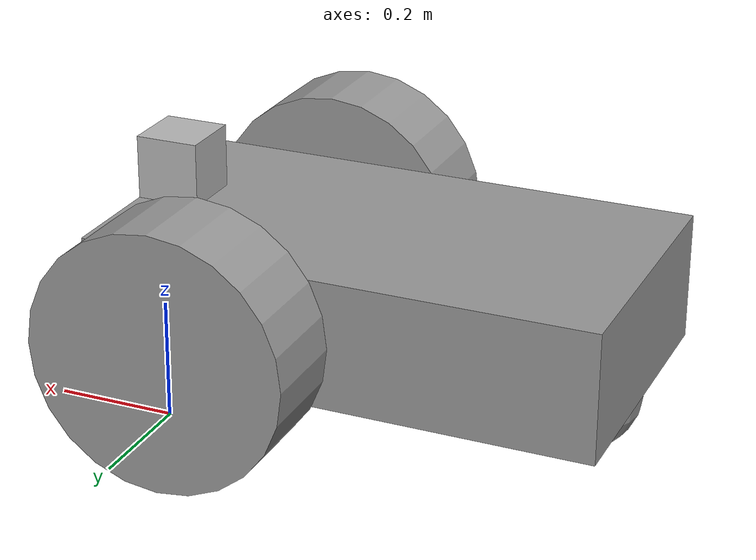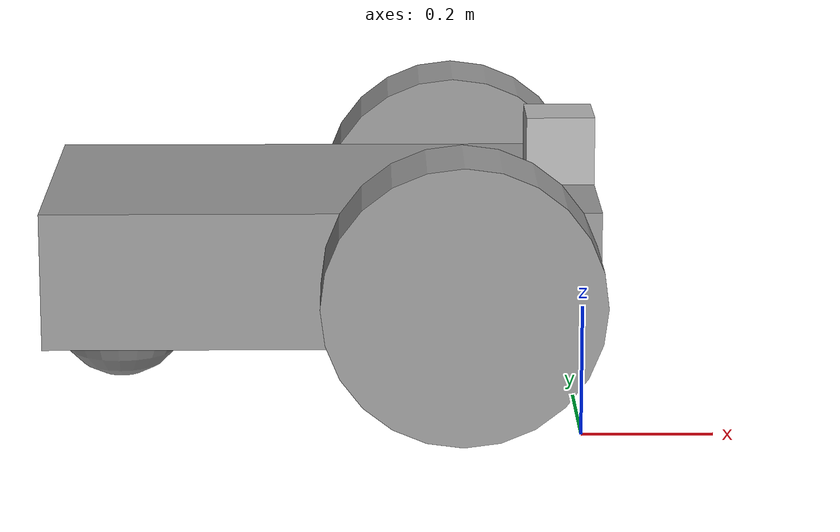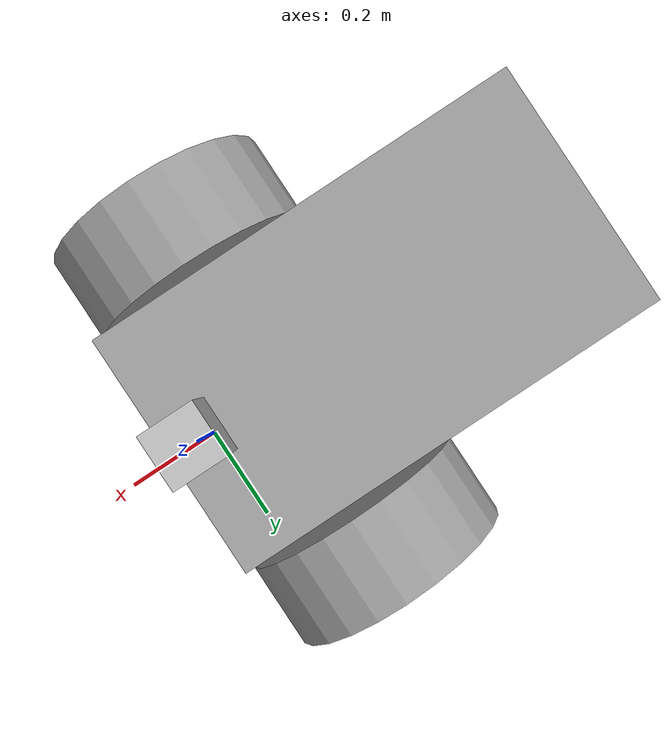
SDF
<?xml version='1.0'?>
<sdf version='1.6'>
  <model name='model'>
    <link name='link_0'>
      <inertial>
        <mass>1.00629</mass>
        <inertia>
          <ixx>0.119355</ixx>
          <ixy>0</ixy>
          <ixz>0</ixz>
          <iyy>0.286315</iyy>
          <iyz>0</iyz>
          <izz>0.358071</izz>
        </inertia>
        <pose frame=''>0 0 0 0 -0 0</pose>
      </inertial>
      <pose frame=''>-0.389773 -0 0.3 0 -0 0</pose>
      <gravity>1</gravity>
      <self_collide>0</self_collide>
      <kinematic>0</kinematic>
      <enable_wind>0</enable_wind>
      <visual name='visual'>
        <pose frame=''>0 0 0 0 -0 0</pose>
        <geometry>
          <box>
            <size>0.8 0.45 0.2</size>
          </box>
        </geometry>
        <material>
          <lighting>1</lighting>
          <script>
            <uri>file://media/materials/scripts/gazebo.material</uri>
            <name>Gazebo/Grey</name>
          </script>
          <shader type='vertex'>
            <normal_map>__default__</normal_map>
          </shader>
          <ambient>0.3 0.3 0.3 1</ambient>
          <diffuse>0.7 0.7 0.7 1</diffuse>
          <specular>0.01 0.01 0.01 1</specular>
          <emissive>0 0 0 1</emissive>
        </material>
        <transparency>0</transparency>
        <cast_shadows>1</cast_shadows>
      </visual>
      <collision name='collision'>
        <laser_retro>0</laser_retro>
        <max_contacts>10</max_contacts>
        <pose frame=''>0 0 0 0 -0 0</pose>
        <geometry>
          <box>
            <size>0.8 0.45 0.2</size>
          </box>
        </geometry>
        <surface>
          <friction>
            <ode>
              <mu>1</mu>
              <mu2>1</mu2>
              <fdir1>0 0 0</fdir1>
              <slip1>0</slip1>
              <slip2>0</slip2>
            </ode>
            <torsional>
              <coefficient>1</coefficient>
              <patch_radius>0</patch_radius>
              <surface_radius>0</surface_radius>
              <use_patch_radius>1</use_patch_radius>
              <ode>
                <slip>0</slip>
              </ode>
            </torsional>
          </friction>
          <bounce>
            <restitution_coefficient>0</restitution_coefficient>
            <threshold>1e+06</threshold>
          </bounce>
          <contact>
            <collide_without_contact>0</collide_without_contact>
            <collide_without_contact_bitmask>1</collide_without_contact_bitmask>
            <collide_bitmask>1</collide_bitmask>
            <ode>
              <soft_cfm>0</soft_cfm>
              <soft_erp>0.2</soft_erp>
              <kp>1e+13</kp>
              <kd>1</kd>
              <max_vel>0.01</max_vel>
              <min_depth>0</min_depth>
            </ode>
            <bullet>
              <split_impulse>1</split_impulse>
              <split_impulse_penetration_threshold>-0.01</split_impulse_penetration_threshold>
              <soft_cfm>0</soft_cfm>
              <soft_erp>0.2</soft_erp>
              <kp>1e+13</kp>
              <kd>1</kd>
            </bullet>
          </contact>
        </surface>
      </collision>
    </link>
    <link name='link_0_0'>
      <inertial>
        <mass>1</mass>
        <inertia>
          <ixx>0.1</ixx>
          <ixy>0</ixy>
          <ixz>0</ixz>
          <iyy>0.1</iyy>
          <iyz>0</iyz>
          <izz>0.1</izz>
        </inertia>
        <pose frame=''>0 0 0 0 -0 0</pose>
      </inertial>
      <pose frame=''>-0.689795 3.2e-05 0.199999 0 -0 0</pose>
      <gravity>1</gravity>
      <self_collide>0</self_collide>
      <kinematic>0</kinematic>
      <enable_wind>0</enable_wind>
      <visual name='visual'>
        <pose frame=''>0 0 0 0 -0 0</pose>
        <geometry>
          <sphere>
            <radius>0.1</radius>
          </sphere>
        </geometry>
        <material>
          <lighting>1</lighting>
          <script>
            <uri>file://media/materials/scripts/gazebo.material</uri>
            <name>Gazebo/Grey</name>
          </script>
          <shader type='vertex'>
            <normal_map>__default__</normal_map>
          </shader>
          <ambient>0.3 0.3 0.3 1</ambient>
          <diffuse>0.7 0.7 0.7 1</diffuse>
          <specular>0.01 0.01 0.01 1</specular>
          <emissive>0 0 0 1</emissive>
        </material>
        <transparency>0</transparency>
        <cast_shadows>1</cast_shadows>
      </visual>
      <collision name='collision'>
        <laser_retro>0</laser_retro>
        <max_contacts>10</max_contacts>
        <pose frame=''>0 0 0 0 -0 0</pose>
        <geometry>
          <sphere>
            <radius>0.1</radius>
          </sphere>
        </geometry>
        <surface>
          <friction>
            <ode>
              <mu>1</mu>
              <mu2>1</mu2>
              <fdir1>0 0 0</fdir1>
              <slip1>0</slip1>
              <slip2>0</slip2>
            </ode>
            <torsional>
              <coefficient>1</coefficient>
              <patch_radius>0</patch_radius>
              <surface_radius>0</surface_radius>
              <use_patch_radius>1</use_patch_radius>
              <ode>
                <slip>0</slip>
              </ode>
            </torsional>
          </friction>
          <bounce>
            <restitution_coefficient>0</restitution_coefficient>
            <threshold>1e+06</threshold>
          </bounce>
          <contact>
            <collide_without_contact>0</collide_without_contact>
            <collide_without_contact_bitmask>1</collide_without_contact_bitmask>
            <collide_bitmask>1</collide_bitmask>
            <ode>
              <soft_cfm>0</soft_cfm>
              <soft_erp>0.2</soft_erp>
              <kp>1e+13</kp>
              <kd>1</kd>
              <max_vel>0.01</max_vel>
              <min_depth>0</min_depth>
            </ode>
            <bullet>
              <split_impulse>1</split_impulse>
              <split_impulse_penetration_threshold>-0.01</split_impulse_penetration_threshold>
              <soft_cfm>0</soft_cfm>
              <soft_erp>0.2</soft_erp>
              <kp>1e+13</kp>
              <kd>1</kd>
            </bullet>
          </contact>
        </surface>
      </collision>
    </link>
    <link name='link_1'>
      <inertial>
        <mass>1</mass>
        <inertia>
          <ixx>0.145833</ixx>
          <ixy>0</ixy>
          <ixz>0</ixz>
          <iyy>0.145833</iyy>
          <iyz>0</iyz>
          <izz>0.125</izz>
        </inertia>
        <pose frame=''>0 0 0 0 -0 0</pose>
      </inertial>
      <pose frame=''>-0.189783 -0.300107 0.300001 1.5707 -0 0</pose>
      <gravity>1</gravity>
      <self_collide>0</self_collide>
      <kinematic>0</kinematic>
      <enable_wind>0</enable_wind>
      <visual name='visual'>
        <pose frame=''>0 0 0 0 -0 0</pose>
        <geometry>
          <cylinder>
            <radius>0.2</radius>
            <length>0.15</length>
          </cylinder>
        </geometry>
        <material>
          <lighting>1</lighting>
          <script>
            <uri>file://media/materials/scripts/gazebo.material</uri>
            <name>Gazebo/Grey</name>
          </script>
          <shader type='vertex'>
            <normal_map>__default__</normal_map>
          </shader>
          <ambient>0.3 0.3 0.3 1</ambient>
          <diffuse>0.7 0.7 0.7 1</diffuse>
          <specular>0.01 0.01 0.01 1</specular>
          <emissive>0 0 0 1</emissive>
        </material>
        <transparency>0</transparency>
        <cast_shadows>1</cast_shadows>
      </visual>
      <collision name='collision'>
        <laser_retro>0</laser_retro>
        <max_contacts>10</max_contacts>
        <pose frame=''>0 0 0 0 -0 0</pose>
        <geometry>
          <cylinder>
            <radius>0.2</radius>
            <length>0.15</length>
          </cylinder>
        </geometry>
        <surface>
          <friction>
            <ode>
              <mu>1</mu>
              <mu2>1</mu2>
              <fdir1>0 0 0</fdir1>
              <slip1>0</slip1>
              <slip2>0</slip2>
            </ode>
            <torsional>
              <coefficient>1</coefficient>
              <patch_radius>0</patch_radius>
              <surface_radius>0</surface_radius>
              <use_patch_radius>1</use_patch_radius>
              <ode>
                <slip>0</slip>
              </ode>
            </torsional>
          </friction>
          <bounce>
            <restitution_coefficient>0</restitution_coefficient>
            <threshold>1e+06</threshold>
          </bounce>
          <contact>
            <collide_without_contact>0</collide_without_contact>
            <collide_without_contact_bitmask>1</collide_without_contact_bitmask>
            <collide_bitmask>1</collide_bitmask>
            <ode>
              <soft_cfm>0</soft_cfm>
              <soft_erp>0.2</soft_erp>
              <kp>1e+13</kp>
              <kd>1</kd>
              <max_vel>0.01</max_vel>
              <min_depth>0</min_depth>
            </ode>
            <bullet>
              <split_impulse>1</split_impulse>
              <split_impulse_penetration_threshold>-0.01</split_impulse_penetration_threshold>
              <soft_cfm>0</soft_cfm>
              <soft_erp>0.2</soft_erp>
              <kp>1e+13</kp>
              <kd>1</kd>
            </bullet>
          </contact>
        </surface>
      </collision>
    </link>
    <link name='link_1_clone'>
      <inertial>
        <mass>1</mass>
        <inertia>
          <ixx>0.145833</ixx>
          <ixy>0</ixy>
          <ixz>0</ixz>
          <iyy>0.145833</iyy>
          <iyz>0</iyz>
          <izz>0.125</izz>
        </inertia>
        <pose frame=''>0 0 0 0 -0 0</pose>
      </inertial>
      <pose frame=''>-0.189716 0.306996 0.300002 1.5707 -0 0</pose>
      <gravity>1</gravity>
      <self_collide>0</self_collide>
      <kinematic>0</kinematic>
      <enable_wind>0</enable_wind>
      <visual name='visual'>
        <pose frame=''>0 0 0 0 -0 0</pose>
        <geometry>
          <cylinder>
            <radius>0.2</radius>
            <length>0.15</length>
          </cylinder>
        </geometry>
        <material>
          <lighting>1</lighting>
          <script>
            <uri>file://media/materials/scripts/gazebo.material</uri>
            <name>Gazebo/Grey</name>
          </script>
          <shader type='vertex'>
            <normal_map>__default__</normal_map>
          </shader>
          <ambient>0.3 0.3 0.3 1</ambient>
          <diffuse>0.7 0.7 0.7 1</diffuse>
          <specular>0.01 0.01 0.01 1</specular>
          <emissive>0 0 0 1</emissive>
        </material>
        <transparency>0</transparency>
        <cast_shadows>1</cast_shadows>
      </visual>
      <collision name='collision'>
        <laser_retro>0</laser_retro>
        <max_contacts>10</max_contacts>
        <pose frame=''>0 0 0 0 -0 0</pose>
        <geometry>
          <cylinder>
            <radius>0.2</radius>
            <length>0.15</length>
          </cylinder>
        </geometry>
        <surface>
          <friction>
            <ode>
              <mu>1</mu>
              <mu2>1</mu2>
              <fdir1>0 0 0</fdir1>
              <slip1>0</slip1>
              <slip2>0</slip2>
            </ode>
            <torsional>
              <coefficient>1</coefficient>
              <patch_radius>0</patch_radius>
              <surface_radius>0</surface_radius>
              <use_patch_radius>1</use_patch_radius>
              <ode>
                <slip>0</slip>
              </ode>
            </torsional>
          </friction>
          <bounce>
            <restitution_coefficient>0</restitution_coefficient>
            <threshold>1e+06</threshold>
          </bounce>
          <contact>
            <collide_without_contact>0</collide_without_contact>
            <collide_without_contact_bitmask>1</collide_without_contact_bitmask>
            <collide_bitmask>1</collide_bitmask>
            <ode>
              <soft_cfm>0</soft_cfm>
              <soft_erp>0.2</soft_erp>
              <kp>1e+13</kp>
              <kd>1</kd>
              <max_vel>0.01</max_vel>
              <min_depth>0</min_depth>
            </ode>
            <bullet>
              <split_impulse>1</split_impulse>
              <split_impulse_penetration_threshold>-0.01</split_impulse_penetration_threshold>
              <soft_cfm>0</soft_cfm>
              <soft_erp>0.2</soft_erp>
              <kp>1e+13</kp>
              <kd>1</kd>
            </bullet>
          </contact>
        </surface>
      </collision>
    </link>
    <model name='depth_camera'>
      <link name='link'>
        <pose frame=''>0 0 0.05 0 -0 0</pose>
        <inertial>
          <mass>0.1</mass>
          <inertia>
            <ixx>0.000166667</ixx>
            <iyy>0.000166667</iyy>
            <izz>0.000166667</izz>
            <ixy>0</ixy>
            <ixz>0</ixz>
            <iyz>0</iyz>
          </inertia>
        </inertial>
        <collision name='collision'>
          <geometry>
            <box>
              <size>0.1 0.1 0.1</size>
            </box>
          </geometry>
          <max_contacts>10</max_contacts>
          <surface>
            <contact>
              <ode/>
            </contact>
            <bounce/>
            <friction>
              <torsional>
                <ode/>
              </torsional>
              <ode/>
            </friction>
          </surface>
        </collision>
        <visual name='visual'>
          <geometry>
            <box>
              <size>0.1 0.1 0.1</size>
            </box>
          </geometry>
        </visual>
        <sensor name='camera' type='depth'>
          <camera name='__default__'>
            <horizontal_fov>1.047</horizontal_fov>
            <image>
              <width>320</width>
              <height>240</height>
            </image>
            <clip>
              <near>0.1</near>
              <far>100</far>
            </clip>
          </camera>
          <always_on>1</always_on>
          <update_rate>30</update_rate>
          <visualize>1</visualize>
        </sensor>
        <self_collide>0</self_collide>
        <enable_wind>0</enable_wind>
        <kinematic>0</kinematic>
      </link>
      <pose frame=''>0.010255 -3.8e-05 0.449999 0.198715 -1.57079 -0.198715</pose>
    </model>
    <joint name='link_0_JOINT_1' type='revolute'>
      <parent>link_0</parent>
      <child>link_1</child>
      <pose frame=''>0 0 0 0 -0 0</pose>
      <axis>
        <xyz>0 0 1</xyz>
        <use_parent_model_frame>0</use_parent_model_frame>
        <limit>
          <lower>-1.79769e+308</lower>
          <upper>1.79769e+308</upper>
          <effort>-1</effort>
          <velocity>-1</velocity>
        </limit>
        <dynamics>
          <spring_reference>0</spring_reference>
          <spring_stiffness>0</spring_stiffness>
          <damping>0</damping>
          <friction>0</friction>
        </dynamics>
      </axis>
      <physics>
        <ode>
          <limit>
            <cfm>0</cfm>
            <erp>0.2</erp>
          </limit>
          <suspension>
            <cfm>0</cfm>
            <erp>0.2</erp>
          </suspension>
        </ode>
      </physics>
    </joint>
    <joint name='link_0_JOINT_2' type='revolute'>
      <parent>link_0</parent>
      <child>link_1_clone</child>
      <pose frame=''>0 0 0 0 -0 0</pose>
      <axis>
        <xyz>1 0 0</xyz>
        <use_parent_model_frame>0</use_parent_model_frame>
        <limit>
          <lower>-1.79769e+308</lower>
          <upper>1.79769e+308</upper>
          <effort>-1</effort>
          <velocity>-1</velocity>
        </limit>
        <dynamics>
          <spring_reference>0</spring_reference>
          <spring_stiffness>0</spring_stiffness>
          <damping>0</damping>
          <friction>0</friction>
        </dynamics>
      </axis>
      <physics>
        <ode>
          <limit>
            <cfm>0</cfm>
            <erp>0.2</erp>
          </limit>
          <suspension>
            <cfm>0</cfm>
            <erp>0.2</erp>
          </suspension>
        </ode>
      </physics>
    </joint>
    <joint name='link_0_JOINT_3' type='ball'>
      <parent>link_0</parent>
      <child>link_0_0</child>
      <pose frame=''>0 0 0 0 -0 0</pose>
      <physics>
        <ode>
          <limit>
            <cfm>0</cfm>
            <erp>0.2</erp>
          </limit>
          <suspension>
            <cfm>0</cfm>
            <erp>0.2</erp>
          </suspension>
        </ode>
      </physics>
    </joint>
    <joint name='link_JOINT_5' type='fixed'>
      <parent>depth_camera::link</parent>
      <child>link_0</child>
      <pose frame=''>0 0 0 0 -0 0</pose>
      <physics>
        <ode>
          <limit>
            <cfm>0</cfm>
            <erp>0.2</erp>
          </limit>
          <suspension>
            <cfm>0</cfm>
            <erp>0.2</erp>
          </suspension>
        </ode>
      </physics>
    </joint>
    <static>0</static>
    <allow_auto_disable>1</allow_auto_disable>
  </model>
</sdf>
